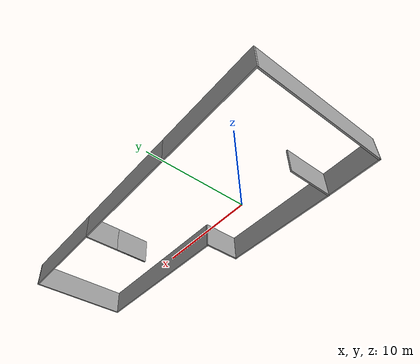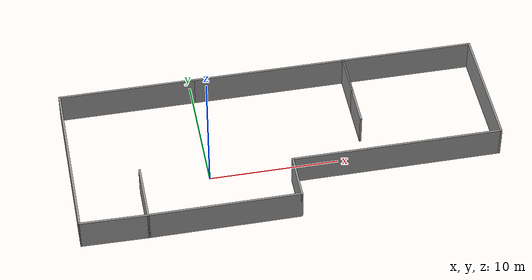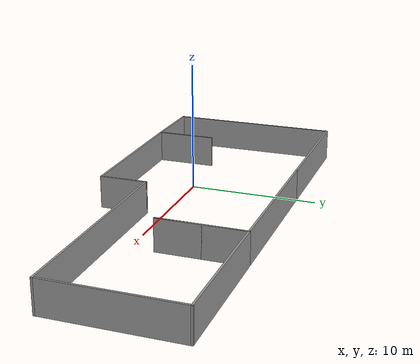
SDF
<?xml version='1.0'?>
<sdf version='1.7'>
  <model name='hari'>
    <pose>6.03427 1.73427 0 0 -0 0</pose>
    <link name='Wall_0'>
      <collision name='Wall_0_Collision'>
        <geometry>
          <box>
            <size>4.75 0.15 2.5</size>
          </box>
        </geometry>
        <pose>0 0 1.25 0 -0 0</pose>
      </collision>
      <visual name='Wall_0_Visual'>
        <pose>0 0 1.25 0 -0 0</pose>
        <geometry>
          <box>
            <size>4.75 0.15 2.5</size>
          </box>
        </geometry>
        <material>
          <script>
            <uri>file://media/materials/scripts/gazebo.material</uri>
            <name>Gazebo/Grey</name>
          </script>
          <ambient>1 1 1 1</ambient>
        </material>
        <meta>
          <layer>0</layer>
        </meta>
      </visual>
      <pose>-11.4243 -4.42427 0 0 -0 -1.5708</pose>
    </link>
    <link name='Wall_1'>
      <collision name='Wall_1_Collision'>
        <geometry>
          <box>
            <size>11.75 0.15 2.5</size>
          </box>
        </geometry>
        <pose>0 0 1.25 0 -0 0</pose>
      </collision>
      <visual name='Wall_1_Visual'>
        <pose>0 0 1.25 0 -0 0</pose>
        <geometry>
          <box>
            <size>11.75 0.15 2.5</size>
          </box>
        </geometry>
        <material>
          <script>
            <uri>file://media/materials/scripts/gazebo.material</uri>
            <name>Gazebo/Grey</name>
          </script>
          <ambient>1 1 1 1</ambient>
        </material>
        <meta>
          <layer>0</layer>
        </meta>
      </visual>
      <pose>-5.62427 -6.72427 0 0 -0 0</pose>
    </link>
    <link name='Wall_10'>
      <collision name='Wall_10_Collision'>
        <geometry>
          <box>
            <size>10.75 0.15 2.5</size>
          </box>
        </geometry>
        <pose>0 0 1.25 0 -0 0</pose>
      </collision>
      <visual name='Wall_10_Visual'>
        <pose>0 0 1.25 0 -0 0</pose>
        <geometry>
          <box>
            <size>10.75 0.15 2.5</size>
          </box>
        </geometry>
        <material>
          <script>
            <uri>file://media/materials/scripts/gazebo.material</uri>
            <name>Gazebo/Grey</name>
          </script>
          <ambient>1 1 1 1</ambient>
        </material>
        <meta>
          <layer>0</layer>
        </meta>
      </visual>
      <pose>-11.2243 6.72573 0 0 -0 3.14159</pose>
    </link>
    <link name='Wall_11'>
      <collision name='Wall_11_Collision'>
        <geometry>
          <box>
            <size>13.5 0.15 2.5</size>
          </box>
        </geometry>
        <pose>0 0 1.25 0 -0 0</pose>
      </collision>
      <visual name='Wall_11_Visual'>
        <pose>0 0 1.25 0 -0 0</pose>
        <geometry>
          <box>
            <size>13.5 0.15 2.5</size>
          </box>
        </geometry>
        <material>
          <script>
            <uri>file://media/materials/scripts/gazebo.material</uri>
            <name>Gazebo/Grey</name>
          </script>
          <ambient>1 1 1 1</ambient>
        </material>
        <meta>
          <layer>0</layer>
        </meta>
      </visual>
      <pose>-16.5243 0.050727 0 0 -0 -1.5708</pose>
    </link>
    <link name='Wall_12'>
      <collision name='Wall_12_Collision'>
        <geometry>
          <box>
            <size>5.25098 0.15 2.5</size>
          </box>
        </geometry>
        <pose>0 0 1.25 0 -0 0</pose>
      </collision>
      <visual name='Wall_12_Visual'>
        <pose>0 0 1.25 0 -0 0</pose>
        <geometry>
          <box>
            <size>5.25098 0.15 2.5</size>
          </box>
        </geometry>
        <material>
          <script>
            <uri>file://media/materials/scripts/gazebo.material</uri>
            <name>Gazebo/Grey</name>
          </script>
          <ambient>1 1 1 1</ambient>
        </material>
        <meta>
          <layer>0</layer>
        </meta>
      </visual>
      <pose>-13.9743 -6.67427 0 0 -0 -0.019605</pose>
    </link>
    <link name='Wall_3'>
      <collision name='Wall_3_Collision'>
        <geometry>
          <box>
            <size>3.75 0.15 2.5</size>
          </box>
        </geometry>
        <pose>0 0 1.25 0 -0 0</pose>
      </collision>
      <visual name='Wall_3_Visual'>
        <pose>0 0 1.25 0 -0 0</pose>
        <geometry>
          <box>
            <size>3.75 0.15 2.5</size>
          </box>
        </geometry>
        <material>
          <script>
            <uri>file://media/materials/scripts/gazebo.material</uri>
            <name>Gazebo/Grey</name>
          </script>
          <ambient>1 1 1 1</ambient>
        </material>
        <meta>
          <layer>0</layer>
        </meta>
      </visual>
      <pose>0.175728 -4.92427 0 0 -0 1.5708</pose>
    </link>
    <link name='Wall_4'>
      <collision name='Wall_4_Collision'>
        <geometry>
          <box>
            <size>16.5 0.15 2.5</size>
          </box>
        </geometry>
        <pose>0 0 1.25 0 -0 0</pose>
      </collision>
      <visual name='Wall_4_Visual'>
        <pose>0 0 1.25 0 -0 0</pose>
        <geometry>
          <box>
            <size>16.5 0.15 2.5</size>
          </box>
        </geometry>
        <material>
          <script>
            <uri>file://media/materials/scripts/gazebo.material</uri>
            <name>Gazebo/Grey</name>
          </script>
          <ambient>1 1 1 1</ambient>
        </material>
        <meta>
          <layer>0</layer>
        </meta>
      </visual>
      <pose>8.35073 -3.12427 0 0 -0 0</pose>
    </link>
    <link name='Wall_5'>
      <collision name='Wall_5_Collision'>
        <geometry>
          <box>
            <size>10 0.15 2.5</size>
          </box>
        </geometry>
        <pose>0 0 1.25 0 -0 0</pose>
      </collision>
      <visual name='Wall_5_Visual'>
        <pose>0 0 1.25 0 -0 0</pose>
        <geometry>
          <box>
            <size>10 0.15 2.5</size>
          </box>
        </geometry>
        <material>
          <script>
            <uri>file://media/materials/scripts/gazebo.material</uri>
            <name>Gazebo/Grey</name>
          </script>
          <ambient>1 1 1 1</ambient>
        </material>
        <meta>
          <layer>0</layer>
        </meta>
      </visual>
      <pose>16.5257 1.80073 0 0 -0 1.5708</pose>
    </link>
    <link name='Wall_6'>
      <collision name='Wall_6_Collision'>
        <geometry>
          <box>
            <size>10.5 0.15 2.5</size>
          </box>
        </geometry>
        <pose>0 0 1.25 0 -0 0</pose>
      </collision>
      <visual name='Wall_6_Visual'>
        <pose>0 0 1.25 0 -0 0</pose>
        <geometry>
          <box>
            <size>10.5 0.15 2.5</size>
          </box>
        </geometry>
        <material>
          <script>
            <uri>file://media/materials/scripts/gazebo.material</uri>
            <name>Gazebo/Grey</name>
          </script>
          <ambient>1 1 1 1</ambient>
        </material>
        <meta>
          <layer>0</layer>
        </meta>
      </visual>
      <pose>11.3507 6.72573 0 0 -0 3.14159</pose>
    </link>
    <link name='Wall_7'>
      <collision name='Wall_7_Collision'>
        <geometry>
          <box>
            <size>6.75 0.15 2.5</size>
          </box>
        </geometry>
        <pose>0 0 1.25 0 -0 0</pose>
      </collision>
      <visual name='Wall_7_Visual'>
        <pose>0 0 1.25 0 -0 0</pose>
        <geometry>
          <box>
            <size>6.75 0.15 2.5</size>
          </box>
        </geometry>
        <material>
          <script>
            <uri>file://media/materials/scripts/gazebo.material</uri>
            <name>Gazebo/Grey</name>
          </script>
          <ambient>1 1 1 1</ambient>
        </material>
        <meta>
          <layer>0</layer>
        </meta>
      </visual>
      <pose>6.17573 3.42573 0 0 -0 -1.5708</pose>
    </link>
    <link name='Wall_8'>
      <collision name='Wall_8_Collision'>
        <geometry>
          <box>
            <size>6.75 0.15 2.5</size>
          </box>
        </geometry>
        <pose>0 0 1.25 0 -0 0</pose>
      </collision>
      <visual name='Wall_8_Visual'>
        <pose>0 0 1.25 0 -0 0</pose>
        <geometry>
          <box>
            <size>6.75 0.15 2.5</size>
          </box>
        </geometry>
        <material>
          <script>
            <uri>file://media/materials/scripts/gazebo.material</uri>
            <name>Gazebo/Grey</name>
          </script>
          <ambient>1 1 1 1</ambient>
        </material>
        <meta>
          <layer>0</layer>
        </meta>
      </visual>
      <pose>6.17573 3.42573 0 0 -0 1.5708</pose>
    </link>
    <link name='Wall_9'>
      <collision name='Wall_9_Collision'>
        <geometry>
          <box>
            <size>12.25 0.15 2.5</size>
          </box>
        </geometry>
        <pose>0 0 1.25 0 -0 0</pose>
      </collision>
      <visual name='Wall_9_Visual'>
        <pose>0 0 1.25 0 -0 0</pose>
        <geometry>
          <box>
            <size>12.25 0.15 2.5</size>
          </box>
        </geometry>
        <material>
          <script>
            <uri>file://media/materials/scripts/gazebo.material</uri>
            <name>Gazebo/Grey</name>
          </script>
          <ambient>1 1 1 1</ambient>
        </material>
        <meta>
          <layer>0</layer>
        </meta>
      </visual>
      <pose>0.125728 6.72573 0 0 -0 3.14159</pose>
    </link>
    <static>1</static>
  </model>
</sdf>
